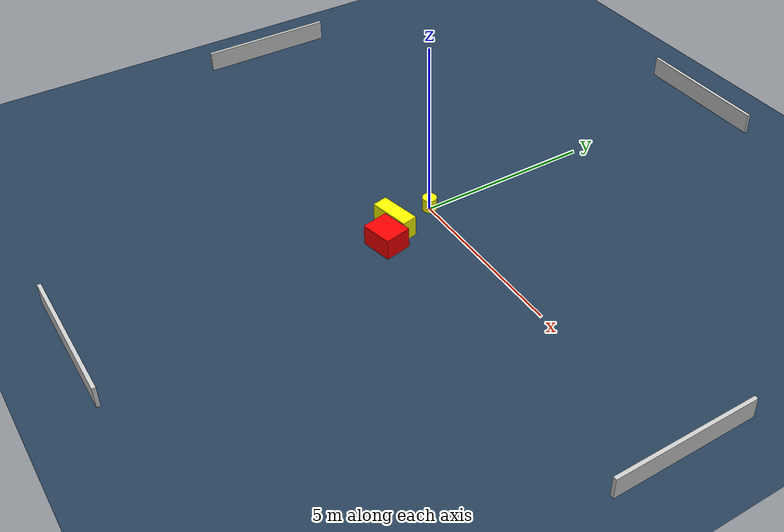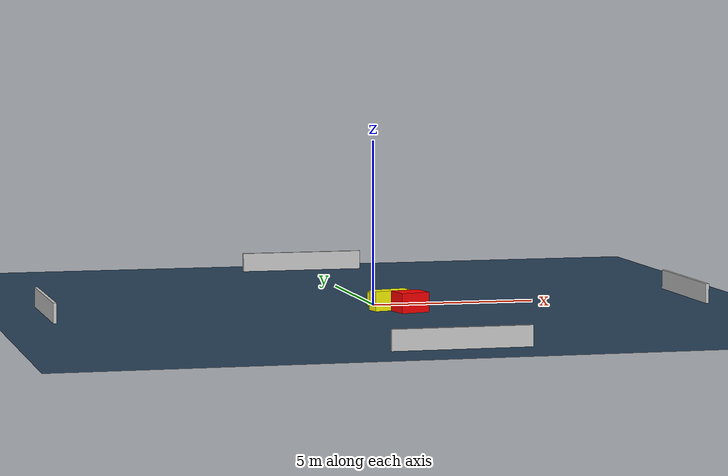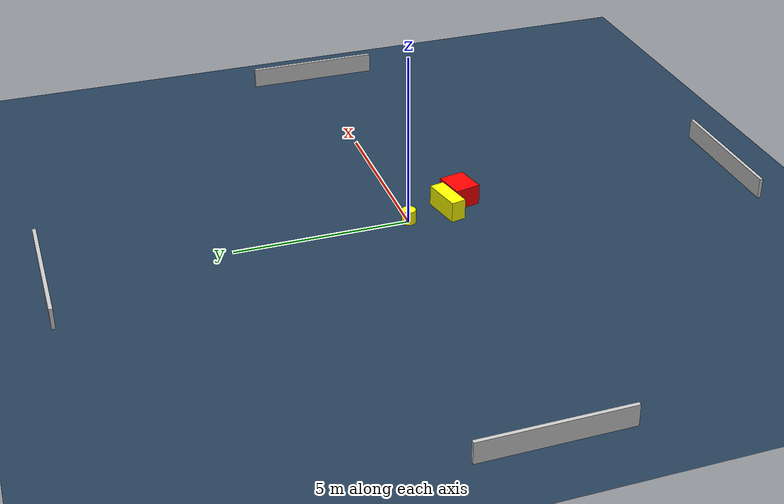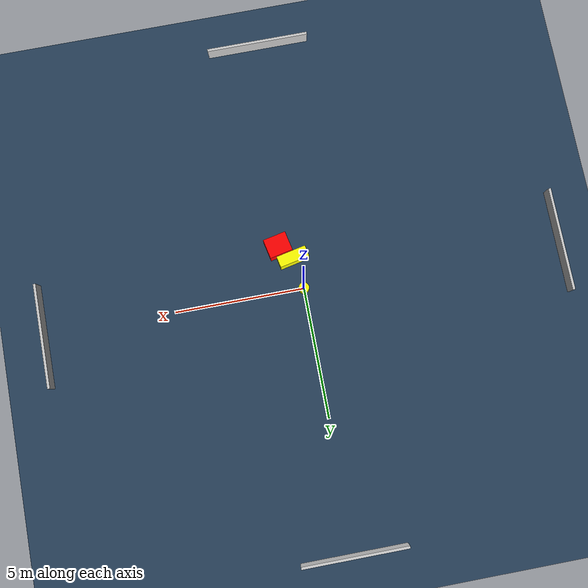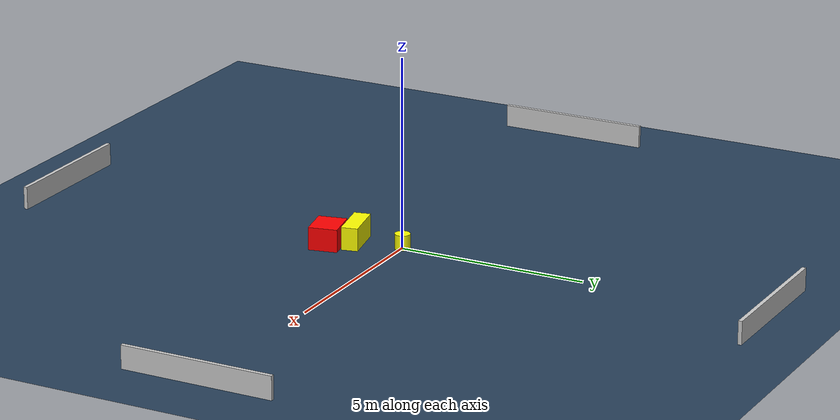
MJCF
<?xml version="1.0" ?>
<mujoco model="generated_environment">
  <option timestep="0.01" integrator="RK4" cone="elliptic"/>
  <default>
    <geom density="1"/>
  </default>
  <asset>
    <texture builtin="gradient" height="3072" name="skybox" rgb1="0.3 0.5 0.7" rgb2="0 0 0" type="skybox" width="512"/>
    <texture builtin="checker" height="300" name="groundplane" rgb1="0.2 0.3 0.4" rgb2="0.1 0.2 0.3" type="2d" width="300"/>
    <material name="groundplane" reflectance="0.2" texrepeat="5 5" texture="groundplane"/>
  </asset>
  <worldbody>
    <light dir="0 0 -1" directional="true" pos="0 0 1.5"/>
    <geom condim="3" friction="0.5 0.005 0.001" material="groundplane" name="floor" pos="0 0 0" size="0 0 0.05" type="plane"/>
    <body name="walls">
      <geom name="wall_1" condim="4" pos="-10.0 0.0 0.3" rgba="0.800000011920929 0.800000011920929 0.800000011920929 1.0" size="0.05 2.0 0.3" type="box"/>
      <geom name="wall_2" condim="4" pos="10.0 0.0 0.3" rgba="0.800000011920929 0.800000011920929 0.800000011920929 1.0" size="0.05 2.0 0.3" type="box"/>
      <geom name="wall_3" condim="4" pos="0.0 -10.0 0.3" rgba="0.800000011920929 0.800000011920929 0.800000011920929 1.0" size="2.0 0.05 0.3" type="box"/>
      <geom name="wall_4" condim="4" pos="0.0 10.0 0.3" rgba="0.800000011920929 0.800000011920929 0.800000011920929 1.0" size="2.0 0.05 0.3" type="box"/>
    </body>
    <body name="robot">
      <joint name="joint_x" type="slide" pos="0 0 0" axis="1 0 0"/>
      <joint name="joint_y" type="slide" pos="0 0 0" axis="0 1 0"/>
      <geom name="robot" type="cylinder" pos="0.0 0.0 0.2" size="0.2 0.2 0.0" mass="5.0" friction="1.0 0.005 0.0001" condim="4" rgba="1.0 1.0 0.0 1.0"/>
    </body>
    <body name="obstacle_1_movable">
      <geom name="obstacle_1_movable" condim="4" pos="0.19986831148279427 -1.2253888027297128 0.3" euler="0 0 281.94814724932826" friction="0.0 0.005 0.001" rgba="1.0 1.0 0.0 1.0" size="0.21680117647292976 0.5832893749661464 0.3" type="box" mass="0.1"/>
      <joint type="free"/>
    </body>
    <body name="obstacle_2_static">
      <geom name="obstacle_2_static" condim="4" pos="0.6831821093812843 -1.7680989257682926 0.3" euler="0 0 281.9089025787433" friction="0.0 0.005 0.001" rgba="1.0 0.0 0.0 1.0" size="0.3772146665524222 0.4493731013763278 0.3" type="box"/>
    </body>
  </worldbody>
  <actuator>
    <motor name="actuator_x" joint="joint_x" gear="1" ctrlrange="-1 1"/>
    <motor name="actuator_y" joint="joint_y" gear="1" ctrlrange="-1 1"/>
  </actuator>
</mujoco>
